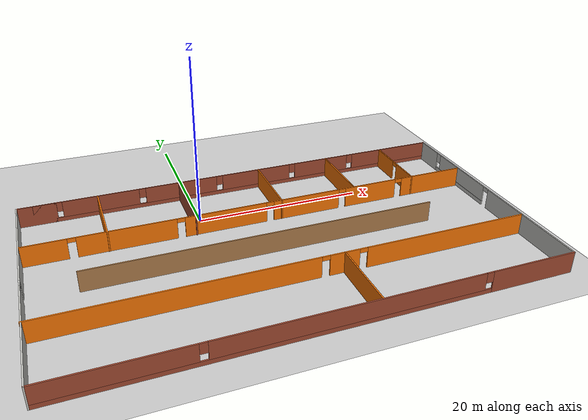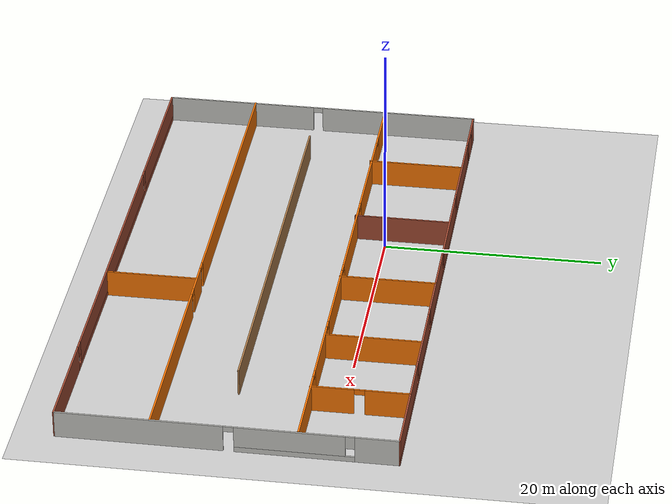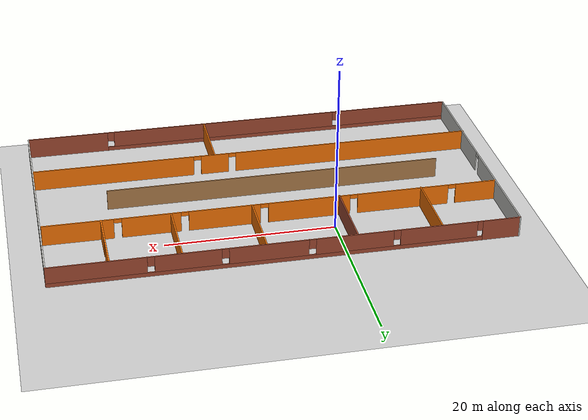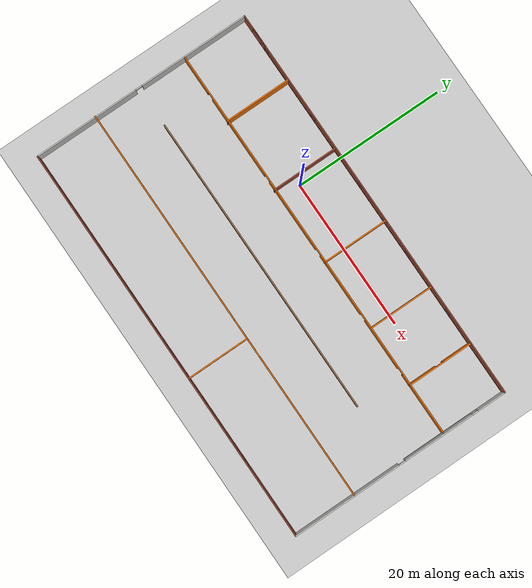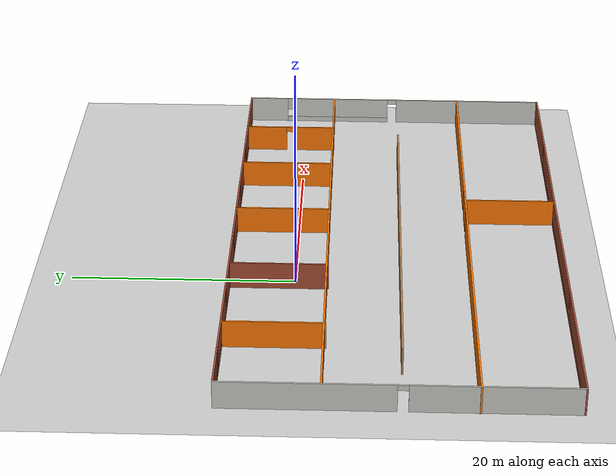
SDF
<sdf version="1.6">
 <world name="default">
  <model name="ground_plane">
   <static>1</static>
   <link name="link">
    <collision name="collision">
     <geometry><plane><normal>0 0 1</normal><size>100 100</size></plane></geometry>
     <surface>
      <contact><collide_bitmask>65535</collide_bitmask></contact>
      <friction><ode><mu>100</mu><mu2>50</mu2></ode></friction>
     </surface>
    </collision>
    <visual name="visual">
     <cast_shadows>0</cast_shadows>
     <geometry><plane><normal>0 0 1</normal><size>100 100</size></plane></geometry>
     <material>
      <script><uri>file://media/materials/scripts/gazebo.material</uri><name>Gazebo/Grey</name></script>
     </material>
    </visual>
   </link>
  </model>
  <model name="building">
   <pose>6.75578 -8.9413 0 0 -0 0</pose>
   <link name="Wall_63">
    <pose>0.95692 14.8001 0 0 -0 0</pose>
    <visual name="Wall_63_Visual_0">
     <pose>-24.8797 0 1.25 0 -0 0</pose>
     <geometry><box><size>2.49063 0.15 2.5</size></box></geometry>
     <material>
      <script><uri>file://media/materials/scripts/gazebo.material</uri><name>Gazebo/Bricks</name></script>
      <ambient>1 0.764706 0.305882 1</ambient>
     </material>
     <meta><layer>0</layer></meta>
    </visual>
    <collision name="Wall_63_Collision_0">
     <geometry><box><size>2.49063 0.15 2.5</size></box></geometry>
     <pose>-24.8797 0 1.25 0 -0 0</pose>
    </collision>
    <visual name="Wall_63_Visual_1">
     <pose>1.24532 0 0.25 0 -0 0</pose>
     <geometry><box><size>49.7594 0.15 0.5</size></box></geometry>
     <material>
      <script><uri>file://media/materials/scripts/gazebo.material</uri><name>Gazebo/Bricks</name></script>
      <ambient>1 0.764706 0.305882 1</ambient>
     </material>
     <meta><layer>0</layer></meta>
    </visual>
    <collision name="Wall_63_Collision_1">
     <geometry><box><size>49.7594 0.15 0.5</size></box></geometry>
     <pose>1.24532 0 0.25 0 -0 0</pose>
    </collision>
    <visual name="Wall_63_Visual_2">
     <pose>-18.3114 0 1.5 0 -0 0</pose>
     <geometry><box><size>9.04584 0.15 2</size></box></geometry>
     <material>
      <script><uri>file://media/materials/scripts/gazebo.material</uri><name>Gazebo/Bricks</name></script>
      <ambient>1 0.764706 0.305882 1</ambient>
     </material>
     <meta><layer>0</layer></meta>
    </visual>
    <collision name="Wall_63_Collision_2">
     <geometry><box><size>9.04584 0.15 2</size></box></geometry>
     <pose>-18.3114 0 1.5 0 -0 0</pose>
    </collision>
    <visual name="Wall_63_Visual_3">
     <pose>-8.50629 0 1.5 0 -0 0</pose>
     <geometry><box><size>8.96447 0.15 2</size></box></geometry>
     <material>
      <script><uri>file://media/materials/scripts/gazebo.material</uri><name>Gazebo/Bricks</name></script>
      <ambient>1 0.764706 0.305882 1</ambient>
     </material>
     <meta><layer>0</layer></meta>
    </visual>
    <collision name="Wall_63_Collision_3">
     <geometry><box><size>8.96447 0.15 2</size></box></geometry>
     <pose>-8.50629 0 1.5 0 -0 0</pose>
    </collision>
    <visual name="Wall_63_Visual_4">
     <pose>1.29887 0 1.5 0 -0 0</pose>
     <geometry><box><size>9.04584 0.15 2</size></box></geometry>
     <material>
      <script><uri>file://media/materials/scripts/gazebo.material</uri><name>Gazebo/Bricks</name></script>
      <ambient>1 0.764706 0.305882 1</ambient>
     </material>
     <meta><layer>0</layer></meta>
    </visual>
    <collision name="Wall_63_Collision_4">
     <geometry><box><size>9.04584 0.15 2</size></box></geometry>
     <pose>1.29887 0 1.5 0 -0 0</pose>
    </collision>
    <visual name="Wall_63_Visual_5">
     <pose>10.3717 0 1.5 0 -0 0</pose>
     <geometry><box><size>7.4998 0.15 2</size></box></geometry>
     <material>
      <script><uri>file://media/materials/scripts/gazebo.material</uri><name>Gazebo/Bricks</name></script>
      <ambient>1 0.764706 0.305882 1</ambient>
     </material>
     <meta><layer>0</layer></meta>
    </visual>
    <collision name="Wall_63_Collision_5">
     <geometry><box><size>7.4998 0.15 2</size></box></geometry>
     <pose>10.3717 0 1.5 0 -0 0</pose>
    </collision>
    <visual name="Wall_63_Visual_6">
     <pose>20.5233 0 1.5 0 -0 0</pose>
     <geometry><box><size>11.2034 0.15 2</size></box></geometry>
     <material>
      <script><uri>file://media/materials/scripts/gazebo.material</uri><name>Gazebo/Bricks</name></script>
      <ambient>1 0.764706 0.305882 1</ambient>
     </material>
     <meta><layer>0</layer></meta>
    </visual>
    <collision name="Wall_63_Collision_6">
     <geometry><box><size>11.2034 0.15 2</size></box></geometry>
     <pose>20.5233 0 1.5 0 -0 0</pose>
    </collision>
    <visual name="Wall_63_Visual_7">
     <pose>-23.2344 0 1.9 0 -0 0</pose>
     <geometry><box><size>0.8 0.15 1.2</size></box></geometry>
     <material>
      <script><uri>file://media/materials/scripts/gazebo.material</uri><name>Gazebo/Bricks</name></script>
      <ambient>1 0.764706 0.305882 1</ambient>
     </material>
     <meta><layer>0</layer></meta>
    </visual>
    <collision name="Wall_63_Collision_7">
     <geometry><box><size>0.8 0.15 1.2</size></box></geometry>
     <pose>-23.2344 0 1.9 0 -0 0</pose>
    </collision>
    <visual name="Wall_63_Visual_8">
     <pose>-13.3885 0 1.9 0 -0 0</pose>
     <geometry><box><size>0.8 0.15 1.2</size></box></geometry>
     <material>
      <script><uri>file://media/materials/scripts/gazebo.material</uri><name>Gazebo/Bricks</name></script>
      <ambient>1 0.764706 0.305882 1</ambient>
     </material>
     <meta><layer>0</layer></meta>
    </visual>
    <collision name="Wall_63_Collision_8">
     <geometry><box><size>0.8 0.15 1.2</size></box></geometry>
     <pose>-13.3885 0 1.9 0 -0 0</pose>
    </collision>
    <visual name="Wall_63_Visual_9">
     <pose>-3.62405 0 1.9 0 -0 0</pose>
     <geometry><box><size>0.8 0.15 1.2</size></box></geometry>
     <material>
      <script><uri>file://media/materials/scripts/gazebo.material</uri><name>Gazebo/Bricks</name></script>
      <ambient>1 0.764706 0.305882 1</ambient>
     </material>
     <meta><layer>0</layer></meta>
    </visual>
    <collision name="Wall_63_Collision_9">
     <geometry><box><size>0.8 0.15 1.2</size></box></geometry>
     <pose>-3.62405 0 1.9 0 -0 0</pose>
    </collision>
    <visual name="Wall_63_Visual_10">
     <pose>6.2218 0 1.9 0 -0 0</pose>
     <geometry><box><size>0.8 0.15 1.2</size></box></geometry>
     <material>
      <script><uri>file://media/materials/scripts/gazebo.material</uri><name>Gazebo/Bricks</name></script>
      <ambient>1 0.764706 0.305882 1</ambient>
     </material>
     <meta><layer>0</layer></meta>
    </visual>
    <collision name="Wall_63_Collision_10">
     <geometry><box><size>0.8 0.15 1.2</size></box></geometry>
     <pose>6.2218 0 1.9 0 -0 0</pose>
    </collision>
    <visual name="Wall_63_Visual_11">
     <pose>14.5216 0 1.9 0 -0 0</pose>
     <geometry><box><size>0.8 0.15 1.2</size></box></geometry>
     <material>
      <script><uri>file://media/materials/scripts/gazebo.material</uri><name>Gazebo/Bricks</name></script>
      <ambient>1 0.764706 0.305882 1</ambient>
     </material>
     <meta><layer>0</layer></meta>
    </visual>
    <collision name="Wall_63_Collision_11">
     <geometry><box><size>0.8 0.15 1.2</size></box></geometry>
     <pose>14.5216 0 1.9 0 -0 0</pose>
    </collision>
   </link>
   <link name="Wall_64">
    <pose>26.9601 -0.04667 0 0 0 -1.57397</pose>
    <visual name="Wall_64_Visual_0">
     <pose>-12.9387 0 1.25 0 -0 0</pose>
     <geometry><box><size>3.77926 0.15 2.5</size></box></geometry>
     <material>
      <script><uri>file://media/materials/scripts/gazebo.material</uri><name>Gazebo/CeilingTiled</name></script>
      <ambient>0.996078 0.47451 0.0196078 1</ambient>
     </material>
     <meta><layer>0</layer></meta>
    </visual>
    <collision name="Wall_64_Collision_0">
     <geometry><box><size>3.77926 0.15 2.5</size></box></geometry>
     <pose>-12.9387 0 1.25 0 -0 0</pose>
    </collision>
    <visual name="Wall_64_Visual_1">
     <pose>7.50603 0 1.25 0 -0 0</pose>
     <geometry><box><size>14.6445 0.15 2.5</size></box></geometry>
     <material>
      <script><uri>file://media/materials/scripts/gazebo.material</uri><name>Gazebo/CeilingTiled</name></script>
      <ambient>0.996078 0.47451 0.0196078 1</ambient>
     </material>
     <meta><layer>0</layer></meta>
    </visual>
    <collision name="Wall_64_Collision_1">
     <geometry><box><size>14.6445 0.15 2.5</size></box></geometry>
     <pose>7.50603 0 1.25 0 -0 0</pose>
    </collision>
    <visual name="Wall_64_Visual_2">
     <pose>-5.88262 0 0.25 0 -0 0</pose>
     <geometry><box><size>10.3328 0.15 0.5</size></box></geometry>
     <material>
      <script><uri>file://media/materials/scripts/gazebo.material</uri><name>Gazebo/CeilingTiled</name></script>
      <ambient>0.996078 0.47451 0.0196078 1</ambient>
     </material>
     <meta><layer>0</layer></meta>
    </visual>
    <collision name="Wall_64_Collision_2">
     <geometry><box><size>10.3328 0.15 0.5</size></box></geometry>
     <pose>-5.88262 0 0.25 0 -0 0</pose>
    </collision>
    <visual name="Wall_64_Visual_3">
     <pose>-5.48262 0 1.5 0 -0 0</pose>
     <geometry><box><size>9.5328 0.15 2</size></box></geometry>
     <material>
      <script><uri>file://media/materials/scripts/gazebo.material</uri><name>Gazebo/CeilingTiled</name></script>
      <ambient>0.996078 0.47451 0.0196078 1</ambient>
     </material>
     <meta><layer>0</layer></meta>
    </visual>
    <collision name="Wall_64_Collision_3">
     <geometry><box><size>9.5328 0.15 2</size></box></geometry>
     <pose>-5.48262 0 1.5 0 -0 0</pose>
    </collision>
    <visual name="Wall_64_Visual_4">
     <pose>-10.649 0 1.9 0 -0 0</pose>
     <geometry><box><size>0.8 0.15 1.2</size></box></geometry>
     <material>
      <script><uri>file://media/materials/scripts/gazebo.material</uri><name>Gazebo/CeilingTiled</name></script>
      <ambient>0.996078 0.47451 0.0196078 1</ambient>
     </material>
     <meta><layer>0</layer></meta>
    </visual>
    <collision name="Wall_64_Collision_4">
     <geometry><box><size>0.8 0.15 1.2</size></box></geometry>
     <pose>-10.649 0 1.9 0 -0 0</pose>
    </collision>
    <visual name="Wall_64_Visual_5">
     <pose>-0.266225 0 2.25 0 -0 0</pose>
     <geometry><box><size>0.9 0.15 0.5</size></box></geometry>
     <material>
      <script><uri>file://media/materials/scripts/gazebo.material</uri><name>Gazebo/CeilingTiled</name></script>
      <ambient>0.996078 0.47451 0.0196078 1</ambient>
     </material>
     <meta><layer>0</layer></meta>
    </visual>
    <collision name="Wall_64_Collision_5">
     <geometry><box><size>0.9 0.15 0.5</size></box></geometry>
     <pose>-0.266225 0 2.25 0 -0 0</pose>
    </collision>
   </link>
   <link name="Wall_65">
    <pose>-0.011657 -14.7999 0 0 -0 3.14159</pose>
    <visual name="Wall_65_Visual_0">
     <pose>-22.0191 0 1.25 0 -0 0</pose>
     <geometry><box><size>9.96181 0.15 2.5</size></box></geometry>
     <material>
      <script><uri>file://media/materials/scripts/gazebo.material</uri><name>Gazebo/Bricks</name></script>
      <ambient>1 0.764706 0.305882 1</ambient>
     </material>
     <meta><layer>0</layer></meta>
    </visual>
    <collision name="Wall_65_Collision_0">
     <geometry><box><size>9.96181 0.15 2.5</size></box></geometry>
     <pose>-22.0191 0 1.25 0 -0 0</pose>
    </collision>
    <visual name="Wall_65_Visual_1">
     <pose>4.9809 0 0.25 0 -0 0</pose>
     <geometry><box><size>44.0382 0.15 0.5</size></box></geometry>
     <material>
      <script><uri>file://media/materials/scripts/gazebo.material</uri><name>Gazebo/Bricks</name></script>
      <ambient>1 0.764706 0.305882 1</ambient>
     </material>
     <meta><layer>0</layer></meta>
    </visual>
    <collision name="Wall_65_Collision_1">
     <geometry><box><size>44.0382 0.15 0.5</size></box></geometry>
     <pose>4.9809 0 0.25 0 -0 0</pose>
    </collision>
    <visual name="Wall_65_Visual_2">
     <pose>-2.08709 0 1.5 0 -0 0</pose>
     <geometry><box><size>28.3022 0.15 2</size></box></geometry>
     <material>
      <script><uri>file://media/materials/scripts/gazebo.material</uri><name>Gazebo/Bricks</name></script>
      <ambient>1 0.764706 0.305882 1</ambient>
     </material>
     <meta><layer>0</layer></meta>
    </visual>
    <collision name="Wall_65_Collision_2">
     <geometry><box><size>28.3022 0.15 2</size></box></geometry>
     <pose>-2.08709 0 1.5 0 -0 0</pose>
    </collision>
    <visual name="Wall_65_Visual_3">
     <pose>19.932 0 1.5 0 -0 0</pose>
     <geometry><box><size>14.136 0.15 2</size></box></geometry>
     <material>
      <script><uri>file://media/materials/scripts/gazebo.material</uri><name>Gazebo/Bricks</name></script>
      <ambient>1 0.764706 0.305882 1</ambient>
     </material>
     <meta><layer>0</layer></meta>
    </visual>
    <collision name="Wall_65_Collision_3">
     <geometry><box><size>14.136 0.15 2</size></box></geometry>
     <pose>19.932 0 1.5 0 -0 0</pose>
    </collision>
    <visual name="Wall_65_Visual_4">
     <pose>-16.6382 0 1.9 0 -0 0</pose>
     <geometry><box><size>0.8 0.15 1.2</size></box></geometry>
     <material>
      <script><uri>file://media/materials/scripts/gazebo.material</uri><name>Gazebo/Bricks</name></script>
      <ambient>1 0.764706 0.305882 1</ambient>
     </material>
     <meta><layer>0</layer></meta>
    </visual>
    <collision name="Wall_65_Collision_4">
     <geometry><box><size>0.8 0.15 1.2</size></box></geometry>
     <pose>-16.6382 0 1.9 0 -0 0</pose>
    </collision>
    <visual name="Wall_65_Visual_5">
     <pose>12.464 0 1.9 0 -0 0</pose>
     <geometry><box><size>0.8 0.15 1.2</size></box></geometry>
     <material>
      <script><uri>file://media/materials/scripts/gazebo.material</uri><name>Gazebo/Bricks</name></script>
      <ambient>1 0.764706 0.305882 1</ambient>
     </material>
     <meta><layer>0</layer></meta>
    </visual>
    <collision name="Wall_65_Collision_5">
     <geometry><box><size>0.8 0.15 1.2</size></box></geometry>
     <pose>12.464 0 1.9 0 -0 0</pose>
    </collision>
   </link>
   <link name="Wall_66">
    <pose>-26.9367 0.000119 0 0 -0 1.5708</pose>
    <visual name="Wall_66_Visual_0">
     <pose>-7.83319 0 1.25 0 -0 0</pose>
     <geometry><box><size>14.0836 0.15 2.5</size></box></geometry>
     <material>
      <script><uri>file://media/materials/scripts/gazebo.material</uri><name>Gazebo/CeilingTiled</name></script>
      <ambient>0.996078 0.47451 0.0196078 1</ambient>
     </material>
     <meta><layer>0</layer></meta>
    </visual>
    <collision name="Wall_66_Collision_0">
     <geometry><box><size>14.0836 0.15 2.5</size></box></geometry>
     <pose>-7.83319 0 1.25 0 -0 0</pose>
    </collision>
    <visual name="Wall_66_Visual_1">
     <pose>7.49181 0 1.25 0 -0 0</pose>
     <geometry><box><size>14.7664 0.15 2.5</size></box></geometry>
     <material>
      <script><uri>file://media/materials/scripts/gazebo.material</uri><name>Gazebo/CeilingTiled</name></script>
      <ambient>0.996078 0.47451 0.0196078 1</ambient>
     </material>
     <meta><layer>0</layer></meta>
    </visual>
    <collision name="Wall_66_Collision_1">
     <geometry><box><size>14.7664 0.15 2.5</size></box></geometry>
     <pose>7.49181 0 1.25 0 -0 0</pose>
    </collision>
    <visual name="Wall_66_Visual_2">
     <pose>-0.341387 0 2.25 0 -0 0</pose>
     <geometry><box><size>0.9 0.15 0.5</size></box></geometry>
     <material>
      <script><uri>file://media/materials/scripts/gazebo.material</uri><name>Gazebo/CeilingTiled</name></script>
      <ambient>0.996078 0.47451 0.0196078 1</ambient>
     </material>
     <meta><layer>0</layer></meta>
    </visual>
    <collision name="Wall_66_Collision_2">
     <geometry><box><size>0.9 0.15 0.5</size></box></geometry>
     <pose>-0.341387 0 2.25 0 -0 0</pose>
    </collision>
   </link>
   <link name="Wall_67">
    <collision name="Wall_67_Collision">
     <geometry><box><size>4.5 0.15 2.5</size></box></geometry>
     <pose>0 0 1.25 0 -0 0</pose>
    </collision>
    <visual name="Wall_67_Visual">
     <pose>0 0 1.25 0 -0 0</pose>
     <geometry><box><size>4.5 0.15 2.5</size></box></geometry>
     <material>
      <script><uri>file://media/materials/scripts/gazebo.material</uri><name>Gazebo/Bricks</name></script>
      <ambient>1 0.764706 0.305882 1</ambient>
     </material>
     <meta><layer>0</layer></meta>
    </visual>
    <pose>-24.7617 14.8001 0 0 -0 0</pose>
   </link>
   <link name="Wall_69">
    <pose>-0.045335 6.18308 0 0 -0 0</pose>
    <visual name="Wall_69_Visual_0">
     <pose>-24.4109 0 1.25 0 -0 0</pose>
     <geometry><box><size>4.92813 0.15 2.5</size></box></geometry>
     <material>
      <script><uri>file://media/materials/scripts/gazebo.material</uri><name>Gazebo/Grey</name></script>
      <ambient>0.996078 0.47451 0.0196078 1</ambient>
     </material>
     <meta><layer>0</layer></meta>
    </visual>
    <collision name="Wall_69_Collision_0">
     <geometry><box><size>4.92813 0.15 2.5</size></box></geometry>
     <pose>-24.4109 0 1.25 0 -0 0</pose>
    </collision>
    <visual name="Wall_69_Visual_1">
     <pose>-15.5239 0 1.25 0 -0 0</pose>
     <geometry><box><size>11.046 0.15 2.5</size></box></geometry>
     <material>
      <script><uri>file://media/materials/scripts/gazebo.material</uri><name>Gazebo/Grey</name></script>
      <ambient>0.996078 0.47451 0.0196078 1</ambient>
     </material>
     <meta><layer>0</layer></meta>
    </visual>
    <collision name="Wall_69_Collision_1">
     <geometry><box><size>11.046 0.15 2.5</size></box></geometry>
     <pose>-15.5239 0 1.25 0 -0 0</pose>
    </collision>
    <visual name="Wall_69_Visual_2">
     <pose>-4.21424 0 1.25 0 -0 0</pose>
     <geometry><box><size>9.77329 0.15 2.5</size></box></geometry>
     <material>
      <script><uri>file://media/materials/scripts/gazebo.material</uri><name>Gazebo/Grey</name></script>
      <ambient>0.996078 0.47451 0.0196078 1</ambient>
     </material>
     <meta><layer>0</layer></meta>
    </visual>
    <collision name="Wall_69_Collision_2">
     <geometry><box><size>9.77329 0.15 2.5</size></box></geometry>
     <pose>-4.21424 0 1.25 0 -0 0</pose>
    </collision>
    <visual name="Wall_69_Visual_3">
     <pose>5.78359 0 1.25 0 -0 0</pose>
     <geometry><box><size>8.42237 0.15 2.5</size></box></geometry>
     <material>
      <script><uri>file://media/materials/scripts/gazebo.material</uri><name>Gazebo/Grey</name></script>
      <ambient>0.996078 0.47451 0.0196078 1</ambient>
     </material>
     <meta><layer>0</layer></meta>
    </visual>
    <collision name="Wall_69_Collision_3">
     <geometry><box><size>8.42237 0.15 2.5</size></box></geometry>
     <pose>5.78359 0 1.25 0 -0 0</pose>
    </collision>
    <visual name="Wall_69_Visual_4">
     <pose>14.3144 0 1.25 0 -0 0</pose>
     <geometry><box><size>6.83933 0.15 2.5</size></box></geometry>
     <material>
      <script><uri>file://media/materials/scripts/gazebo.material</uri><name>Gazebo/Grey</name></script>
      <ambient>0.996078 0.47451 0.0196078 1</ambient>
     </material>
     <meta><layer>0</layer></meta>
    </visual>
    <collision name="Wall_69_Collision_4">
     <geometry><box><size>6.83933 0.15 2.5</size></box></geometry>
     <pose>14.3144 0 1.25 0 -0 0</pose>
    </collision>
    <visual name="Wall_69_Visual_5">
     <pose>22.7546 0 1.25 0 -0 0</pose>
     <geometry><box><size>8.2409 0.15 2.5</size></box></geometry>
     <material>
      <script><uri>file://media/materials/scripts/gazebo.material</uri><name>Gazebo/Grey</name></script>
      <ambient>0.996078 0.47451 0.0196078 1</ambient>
     </material>
     <meta><layer>0</layer></meta>
    </visual>
    <collision name="Wall_69_Collision_5">
     <geometry><box><size>8.2409 0.15 2.5</size></box></geometry>
     <pose>22.7546 0 1.25 0 -0 0</pose>
    </collision>
    <visual name="Wall_69_Visual_6">
     <pose>-21.4969 0 2.25 0 -0 0</pose>
     <geometry><box><size>0.9 0.15 0.5</size></box></geometry>
     <material>
      <script><uri>file://media/materials/scripts/gazebo.material</uri><name>Gazebo/Grey</name></script>
      <ambient>0.996078 0.47451 0.0196078 1</ambient>
     </material>
     <meta><layer>0</layer></meta>
    </visual>
    <collision name="Wall_69_Collision_6">
     <geometry><box><size>0.9 0.15 0.5</size></box></geometry>
     <pose>-21.4969 0 2.25 0 -0 0</pose>
    </collision>
    <visual name="Wall_69_Visual_7">
     <pose>-9.55089 0 2.25 0 -0 0</pose>
     <geometry><box><size>0.9 0.15 0.5</size></box></geometry>
     <material>
      <script><uri>file://media/materials/scripts/gazebo.material</uri><name>Gazebo/Grey</name></script>
      <ambient>0.996078 0.47451 0.0196078 1</ambient>
     </material>
     <meta><layer>0</layer></meta>
    </visual>
    <collision name="Wall_69_Collision_7">
     <geometry><box><size>0.9 0.15 0.5</size></box></geometry>
     <pose>-9.55089 0 2.25 0 -0 0</pose>
    </collision>
    <visual name="Wall_69_Visual_8">
     <pose>1.12241 0 2.25 0 -0 0</pose>
     <geometry><box><size>0.9 0.15 0.5</size></box></geometry>
     <material>
      <script><uri>file://media/materials/scripts/gazebo.material</uri><name>Gazebo/Grey</name></script>
      <ambient>0.996078 0.47451 0.0196078 1</ambient>
     </material>
     <meta><layer>0</layer></meta>
    </visual>
    <collision name="Wall_69_Collision_8">
     <geometry><box><size>0.9 0.15 0.5</size></box></geometry>
     <pose>1.12241 0 2.25 0 -0 0</pose>
    </collision>
    <visual name="Wall_69_Visual_9">
     <pose>10.4448 0 2.25 0 -0 0</pose>
     <geometry><box><size>0.9 0.15 0.5</size></box></geometry>
     <material>
      <script><uri>file://media/materials/scripts/gazebo.material</uri><name>Gazebo/Grey</name></script>
      <ambient>0.996078 0.47451 0.0196078 1</ambient>
     </material>
     <meta><layer>0</layer></meta>
    </visual>
    <collision name="Wall_69_Collision_9">
     <geometry><box><size>0.9 0.15 0.5</size></box></geometry>
     <pose>10.4448 0 2.25 0 -0 0</pose>
    </collision>
    <visual name="Wall_69_Visual_10">
     <pose>18.1841 0 2.25 0 -0 0</pose>
     <geometry><box><size>0.9 0.15 0.5</size></box></geometry>
     <material>
      <script><uri>file://media/materials/scripts/gazebo.material</uri><name>Gazebo/Grey</name></script>
      <ambient>0.996078 0.47451 0.0196078 1</ambient>
     </material>
     <meta><layer>0</layer></meta>
    </visual>
    <collision name="Wall_69_Collision_10">
     <geometry><box><size>0.9 0.15 0.5</size></box></geometry>
     <pose>18.1841 0 2.25 0 -0 0</pose>
    </collision>
   </link>
   <link name="Wall_71">
    <pose>-0.082157 -6.51997 0 0 -0 0</pose>
    <visual name="Wall_71_Visual_0">
     <pose>-12.3837 0 1.25 0 -0 0</pose>
     <geometry><box><size>29.2326 0.15 2.5</size></box></geometry>
     <material>
      <script><uri>file://media/materials/scripts/gazebo.material</uri><name>Gazebo/Grey</name></script>
      <ambient>0.996078 0.47451 0.0196078 1</ambient>
     </material>
     <meta><layer>0</layer></meta>
    </visual>
    <collision name="Wall_71_Collision_0">
     <geometry><box><size>29.2326 0.15 2.5</size></box></geometry>
     <pose>-12.3837 0 1.25 0 -0 0</pose>
    </collision>
    <visual name="Wall_71_Visual_1">
     <pose>4.83487 0 1.25 0 -0 0</pose>
     <geometry><box><size>3.4045 0.15 2.5</size></box></geometry>
     <material>
      <script><uri>file://media/materials/scripts/gazebo.material</uri><name>Gazebo/Grey</name></script>
      <ambient>0.996078 0.47451 0.0196078 1</ambient>
     </material>
     <meta><layer>0</layer></meta>
    </visual>
    <collision name="Wall_71_Collision_1">
     <geometry><box><size>3.4045 0.15 2.5</size></box></geometry>
     <pose>4.83487 0 1.25 0 -0 0</pose>
    </collision>
    <visual name="Wall_71_Visual_2">
     <pose>17.2186 0 1.25 0 -0 0</pose>
     <geometry><box><size>19.5629 0.15 2.5</size></box></geometry>
     <material>
      <script><uri>file://media/materials/scripts/gazebo.material</uri><name>Gazebo/Grey</name></script>
      <ambient>0.996078 0.47451 0.0196078 1</ambient>
     </material>
     <meta><layer>0</layer></meta>
    </visual>
    <collision name="Wall_71_Collision_2">
     <geometry><box><size>19.5629 0.15 2.5</size></box></geometry>
     <pose>17.2186 0 1.25 0 -0 0</pose>
    </collision>
    <visual name="Wall_71_Visual_3">
     <pose>2.68262 0 2.25 0 -0 0</pose>
     <geometry><box><size>0.9 0.15 0.5</size></box></geometry>
     <material>
      <script><uri>file://media/materials/scripts/gazebo.material</uri><name>Gazebo/Grey</name></script>
      <ambient>0.996078 0.47451 0.0196078 1</ambient>
     </material>
     <meta><layer>0</layer></meta>
    </visual>
    <collision name="Wall_71_Collision_3">
     <geometry><box><size>0.9 0.15 0.5</size></box></geometry>
     <pose>2.68262 0 2.25 0 -0 0</pose>
    </collision>
    <visual name="Wall_71_Visual_4">
     <pose>6.98712 0 2.25 0 -0 0</pose>
     <geometry><box><size>0.9 0.15 0.5</size></box></geometry>
     <material>
      <script><uri>file://media/materials/scripts/gazebo.material</uri><name>Gazebo/Grey</name></script>
      <ambient>0.996078 0.47451 0.0196078 1</ambient>
     </material>
     <meta><layer>0</layer></meta>
    </visual>
    <collision name="Wall_71_Collision_4">
     <geometry><box><size>0.9 0.15 0.5</size></box></geometry>
     <pose>6.98712 0 2.25 0 -0 0</pose>
    </collision>
   </link>
   <link name="Wall_73">
    <collision name="Wall_73_Collision">
     <geometry><box><size>8.75 0.15 2.5</size></box></geometry>
     <pose>0 0 1.25 0 -0 0</pose>
    </collision>
    <visual name="Wall_73_Visual">
     <pose>0 0 1.25 0 -0 0</pose>
     <geometry><box><size>8.75 0.15 2.5</size></box></geometry>
     <material>
      <script><uri>file://media/materials/scripts/gazebo.material</uri><name>Gazebo/Grey</name></script>
      <ambient>0.996078 0.47451 0.0196078 1</ambient>
     </material>
     <meta><layer>0</layer></meta>
    </visual>
    <pose>-17.7428 10.3617 0 0 -0 1.5708</pose>
   </link>
   <link name="Wall_75">
    <collision name="Wall_75_Collision">
     <geometry><box><size>8.75 0.15 2.5</size></box></geometry>
     <pose>0 0 1.25 0 -0 0</pose>
    </collision>
    <visual name="Wall_75_Visual">
     <pose>0 0 1.25 0 -0 0</pose>
     <geometry><box><size>8.75 0.15 2.5</size></box></geometry>
     <material>
      <script><uri>file://media/materials/scripts/gazebo.material</uri><name>Gazebo/Bricks</name></script>
      <ambient>0.996078 0.47451 0.0196078 1</ambient>
     </material>
     <meta><layer>0</layer></meta>
    </visual>
    <pose>-7.87167 10.3788 0 0 0 -1.5708</pose>
   </link>
   <link name="Wall_77">
    <collision name="Wall_77_Collision">
     <geometry><box><size>8.75 0.15 2.5</size></box></geometry>
     <pose>0 0 1.25 0 -0 0</pose>
    </collision>
    <visual name="Wall_77_Visual">
     <pose>0 0 1.25 0 -0 0</pose>
     <geometry><box><size>8.75 0.15 2.5</size></box></geometry>
     <material>
      <script><uri>file://media/materials/scripts/gazebo.material</uri><name>Gazebo/Grey</name></script>
      <ambient>0.996078 0.47451 0.0196078 1</ambient>
     </material>
     <meta><layer>0</layer></meta>
    </visual>
    <pose>2.52541 10.4597 0 0 0 -1.5708</pose>
   </link>
   <link name="Wall_79">
    <collision name="Wall_79_Collision">
     <geometry><box><size>8.5 0.15 2.5</size></box></geometry>
     <pose>0 0 1.25 0 -0 0</pose>
    </collision>
    <visual name="Wall_79_Visual">
     <pose>0 0 1.25 0 -0 0</pose>
     <geometry><box><size>8.5 0.15 2.5</size></box></geometry>
     <material>
      <script><uri>file://media/materials/scripts/gazebo.material</uri><name>Gazebo/Grey</name></script>
      <ambient>0.996078 0.47451 0.0196078 1</ambient>
     </material>
     <meta><layer>0</layer></meta>
    </visual>
    <pose>11.992 10.5038 0 0 0 -1.5708</pose>
   </link>
   <link name="Wall_81">
    <pose>20.0427 10.4597 0 0 0 -1.5708</pose>
    <visual name="Wall_81_Visual_0">
     <pose>-2.38459 0 1.25 0 -0 0</pose>
     <geometry><box><size>3.98082 0.15 2.5</size></box></geometry>
     <material>
      <script><uri>file://media/materials/scripts/gazebo.material</uri><name>Gazebo/Grey</name></script>
      <ambient>0.996078 0.47451 0.0196078 1</ambient>
     </material>
     <meta><layer>0</layer></meta>
    </visual>
    <collision name="Wall_81_Collision_0">
     <geometry><box><size>3.98082 0.15 2.5</size></box></geometry>
     <pose>-2.38459 0 1.25 0 -0 0</pose>
    </collision>
    <visual name="Wall_81_Visual_1">
     <pose>2.44041 0 1.25 0 -0 0</pose>
     <geometry><box><size>3.86918 0.15 2.5</size></box></geometry>
     <material>
      <script><uri>file://media/materials/scripts/gazebo.material</uri><name>Gazebo/Grey</name></script>
      <ambient>0.996078 0.47451 0.0196078 1</ambient>
     </material>
     <meta><layer>0</layer></meta>
    </visual>
    <collision name="Wall_81_Collision_1">
     <geometry><box><size>3.86918 0.15 2.5</size></box></geometry>
     <pose>2.44041 0 1.25 0 -0 0</pose>
    </collision>
    <visual name="Wall_81_Visual_2">
     <pose>0.055823 0 2.25 0 -0 0</pose>
     <geometry><box><size>0.9 0.15 0.5</size></box></geometry>
     <material>
      <script><uri>file://media/materials/scripts/gazebo.material</uri><name>Gazebo/Grey</name></script>
      <ambient>0.996078 0.47451 0.0196078 1</ambient>
     </material>
     <meta><layer>0</layer></meta>
    </visual>
    <collision name="Wall_81_Collision_2">
     <geometry><box><size>0.9 0.15 0.5</size></box></geometry>
     <pose>0.055823 0 2.25 0 -0 0</pose>
    </collision>
   </link>
   <link name="Wall_83">
    <collision name="Wall_83_Collision">
     <geometry><box><size>8.25 0.15 2.5</size></box></geometry>
     <pose>0 0 1.25 0 -0 0</pose>
    </collision>
    <visual name="Wall_83_Visual">
     <pose>0 0 1.25 0 -0 0</pose>
     <geometry><box><size>8.25 0.15 2.5</size></box></geometry>
     <material>
      <script><uri>file://media/materials/scripts/gazebo.material</uri><name>Gazebo/Grey</name></script>
      <ambient>0.996078 0.47451 0.0196078 1</ambient>
     </material>
     <meta><layer>0</layer></meta>
    </visual>
    <pose>4.75047 -10.6509 0 0 0 -1.5708</pose>
   </link>
   <link name="Wall_87">
    <collision name="Wall_87_Collision">
     <geometry><box><size>40.25 0.15 2.5</size></box></geometry>
     <pose>0 0 1.25 0 -0 0</pose>
    </collision>
    <visual name="Wall_87_Visual">
     <pose>0 0 1.25 0 -0 0</pose>
     <geometry><box><size>40.25 0.15 2.5</size></box></geometry>
     <material>
      <script><uri>file://media/materials/scripts/gazebo.material</uri><name>Gazebo/Wood</name></script>
      <ambient>1 1 1 1</ambient>
     </material>
     <meta><layer>0</layer></meta>
    </visual>
    <pose>-1.45804 -0.341268 0 0 -0 0</pose>
   </link>
   <static>1</static>
  </model>
 </world>
</sdf>
